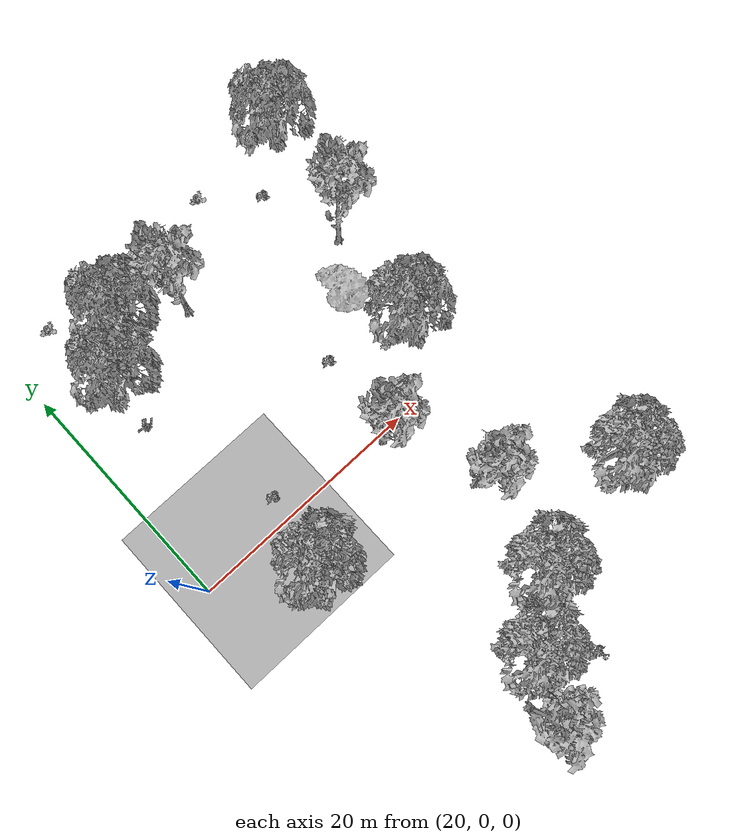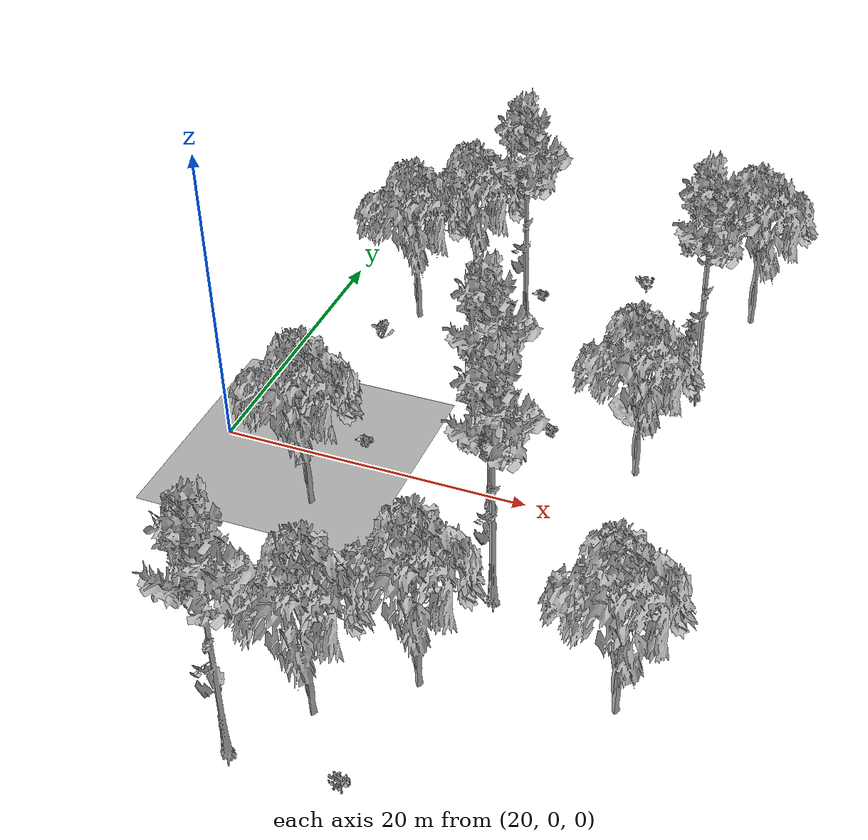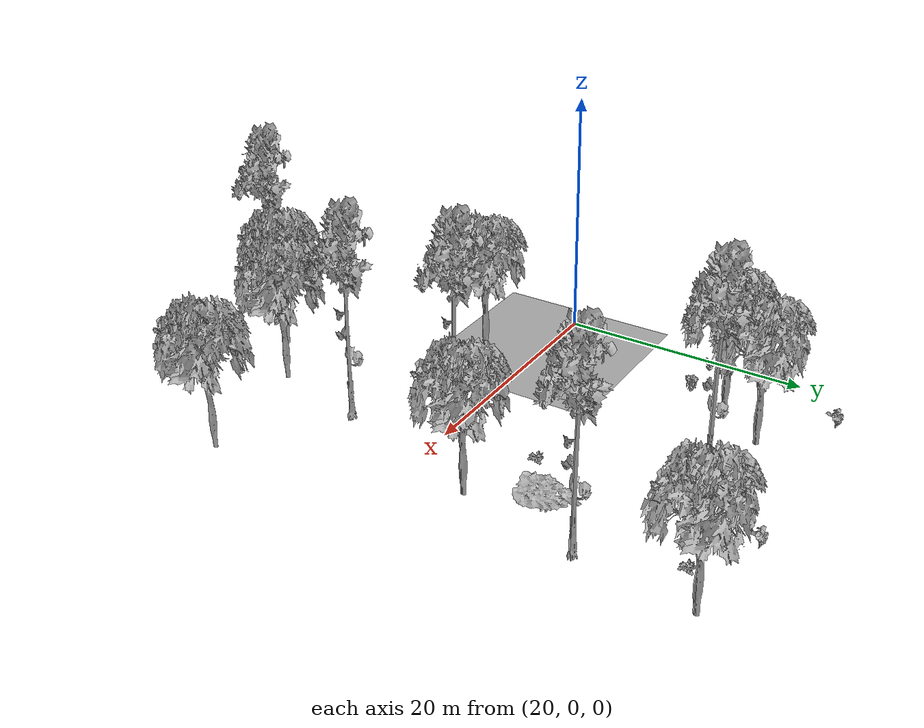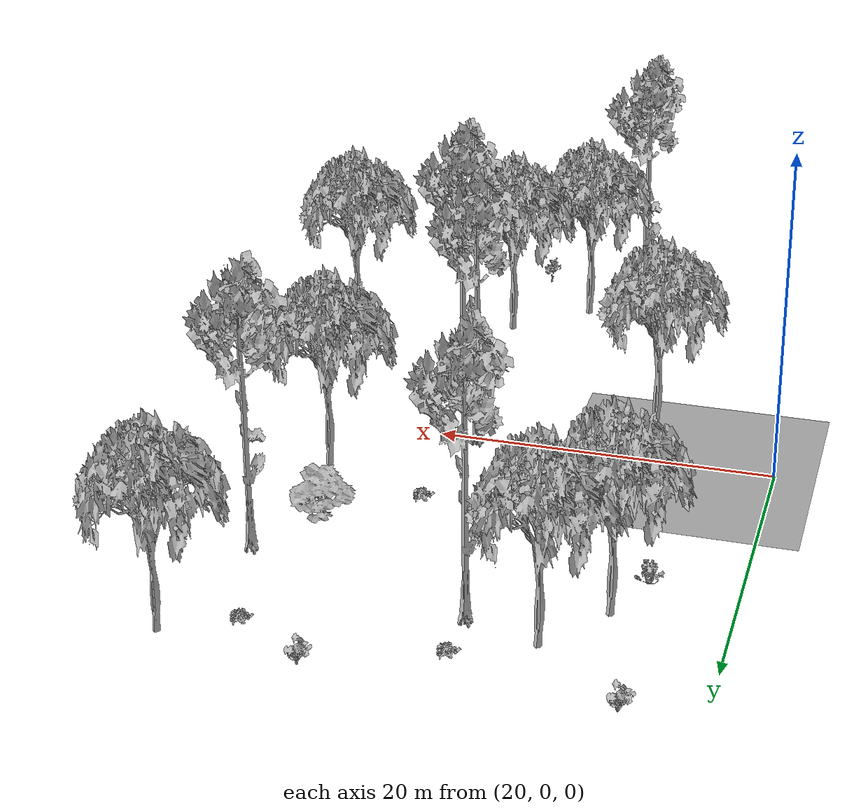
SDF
<sdf version="1.7">
 <world name="default">
  <model name="ground_plane">
   <static>1</static>
   <link name="link">
    <collision name="collision">
     <pose>25.0 0 0 0 -0 0</pose>
     <geometry><plane><normal>0 0 1</normal><size>50 50</size></plane></geometry>
     <surface><contact><ode><min_depth>0.01</min_depth><max_vel>0</max_vel></ode></contact></surface>
    </collision>
    <visual name="grass">
     <pose>25.0 0 0 0 -0 0</pose>
     <cast_shadows>0</cast_shadows>
     <geometry>
      <mesh>
       <scale>0.2731578947368421 0.2802702702702703 0.1</scale>
       <uri>file://grass_plane/meshes/grass_plane.dae</uri>
      </mesh>
     </geometry>
    </visual>
   </link>
  </model>
  <model name="Tree 0">
   <static>1</static>
   <pose>46.74372401099273 14.34421200654024 0 1.57079 -0 0</pose>
   <link name="link">
    <collision name="collision">
     <geometry><mesh><scale>3.5 5 3.5</scale><uri>model://tree_9/meshes/tree_9.obj</uri></mesh></geometry>
    </collision>
    <visual name="visual">
     <geometry><mesh><scale>3.5 5 3.5</scale><uri>model://tree_9/meshes/tree_9.obj</uri></mesh></geometry>
    </visual>
   </link>
  </model>
  <model name="Tree 2">
   <static>1</static>
   <pose>34.99372401099272 -18.989121326793093 0 1.57079 -0 0</pose>
   <link name="link">
    <collision name="collision">
     <geometry><mesh><scale>3.5 5 3.5</scale><uri>model://tree_2/meshes/tree_2.obj</uri></mesh></geometry>
    </collision>
    <visual name="visual">
     <geometry><mesh><scale>3.5 5 3.5</scale><uri>model://tree_2/meshes/tree_2.obj</uri></mesh></geometry>
    </visual>
   </link>
  </model>
  <model name="Tree 4">
   <static>1</static>
   <pose>40.86872401099273 -7.878010215681989 0 1.57079 -0 0</pose>
   <link name="link">
    <collision name="collision">
     <geometry><mesh><scale>3.5 5 3.5</scale><uri>model://tree_9/meshes/tree_9.obj</uri></mesh></geometry>
    </collision>
    <visual name="visual">
     <geometry><mesh><scale>3.5 5 3.5</scale><uri>model://tree_9/meshes/tree_9.obj</uri></mesh></geometry>
    </visual>
   </link>
  </model>
  <model name="Tree 6">
   <static>1</static>
   <pose>29.118724010992725 19.899767562095796 0 1.57079 -0 0</pose>
   <link name="link">
    <collision name="collision">
     <geometry><mesh><scale>3.5 5 3.5</scale><uri>model://tree_2/meshes/tree_2.obj</uri></mesh></geometry>
    </collision>
    <visual name="visual">
     <geometry><mesh><scale>3.5 5 3.5</scale><uri>model://tree_2/meshes/tree_2.obj</uri></mesh></geometry>
    </visual>
   </link>
  </model>
  <model name="Tree 8">
   <static>1</static>
   <pose>49.68122401099273 -13.433565771237538 0 1.57079 -0 0</pose>
   <link name="link">
    <collision name="collision">
     <geometry><mesh><scale>3.5 5 3.5</scale><uri>model://tree_2/meshes/tree_2.obj</uri></mesh></geometry>
    </collision>
    <visual name="visual">
     <geometry><mesh><scale>3.5 5 3.5</scale><uri>model://tree_2/meshes/tree_2.obj</uri></mesh></geometry>
    </visual>
   </link>
  </model>
  <model name="Tree 9">
   <static>1</static>
   <pose>26.181224010992725 16.196063858392087 0 1.57079 -0 0</pose>
   <link name="link">
    <collision name="collision">
     <geometry><mesh><scale>3.5 5 3.5</scale><uri>model://tree_2/meshes/tree_2.obj</uri></mesh></geometry>
    </collision>
    <visual name="visual">
     <geometry><mesh><scale>3.5 5 3.5</scale><uri>model://tree_2/meshes/tree_2.obj</uri></mesh></geometry>
    </visual>
   </link>
  </model>
  <model name="Tree 10">
   <static>1</static>
   <pose>37.93122401099273 -0.470602808274581 0 1.57079 -0 0</pose>
   <link name="link">
    <collision name="collision">
     <geometry><mesh><scale>3.5 5 3.5</scale><uri>model://tree_9/meshes/tree_9.obj</uri></mesh></geometry>
    </collision>
    <visual name="visual">
     <geometry><mesh><scale>3.5 5 3.5</scale><uri>model://tree_9/meshes/tree_9.obj</uri></mesh></geometry>
    </visual>
   </link>
  </model>
  <model name="Tree 12">
   <static>1</static>
   <pose>43.80622401099273 10.640508302836544 0 1.57079 -0 0</pose>
   <link name="link">
    <collision name="collision">
     <geometry><mesh><scale>4 2.5 4</scale><uri>model://tree_1/meshes/tree_1.obj</uri></mesh></geometry>
    </collision>
    <visual name="visual">
     <geometry><mesh><scale>4 2.5 4</scale><uri>model://tree_1/meshes/tree_1.obj</uri></mesh></geometry>
    </visual>
   </link>
  </model>
  <model name="Tree 14">
   <static>1</static>
   <pose>32.05622401099272 -22.692825030496795 0 1.57079 -0 0</pose>
   <link name="link">
    <collision name="collision">
     <geometry><mesh><scale>3.5 5 3.5</scale><uri>model://tree_9/meshes/tree_9.obj</uri></mesh></geometry>
    </collision>
    <visual name="visual">
     <geometry><mesh><scale>3.5 5 3.5</scale><uri>model://tree_9/meshes/tree_9.obj</uri></mesh></geometry>
    </visual>
   </link>
  </model>
  <model name="Tree 16">
   <static>1</static>
   <pose>45.27497401099273 5.084952747280987 0 1.57079 -0 0</pose>
   <link name="link">
    <collision name="collision">
     <geometry><mesh><scale>3.5 5 3.5</scale><uri>model://tree_2/meshes/tree_2.obj</uri></mesh></geometry>
    </collision>
    <visual name="visual">
     <geometry><mesh><scale>3.5 5 3.5</scale><uri>model://tree_2/meshes/tree_2.obj</uri></mesh></geometry>
    </visual>
   </link>
  </model>
  <model name="Tree 18">
   <static>1</static>
   <pose>33.52497401099272 18.04791571024394 0 1.57079 -0 0</pose>
   <link name="link">
    <collision name="collision">
     <geometry><mesh><scale>3.5 5 3.5</scale><uri>model://tree_9/meshes/tree_9.obj</uri></mesh></geometry>
    </collision>
    <visual name="visual">
     <geometry><mesh><scale>3.5 5 3.5</scale><uri>model://tree_9/meshes/tree_9.obj</uri></mesh></geometry>
    </visual>
   </link>
  </model>
  <model name="Tree 20">
   <static>1</static>
   <pose>39.39997401099273 -15.285417623089389 0 1.57079 -0 0</pose>
   <link name="link">
    <collision name="collision">
     <geometry><mesh><scale>3.5 5 3.5</scale><uri>model://tree_2/meshes/tree_2.obj</uri></mesh></geometry>
    </collision>
    <visual name="visual">
     <geometry><mesh><scale>3.5 5 3.5</scale><uri>model://tree_2/meshes/tree_2.obj</uri></mesh></geometry>
    </visual>
   </link>
  </model>
  <model name="Tree 22">
   <static>1</static>
   <pose>27.649974010992725 -4.174306511978283 0 1.57079 -0 0</pose>
   <link name="link">
    <collision name="collision">
     <geometry><mesh><scale>3.5 5 3.5</scale><uri>model://tree_2/meshes/tree_2.obj</uri></mesh></geometry>
    </collision>
    <visual name="visual">
     <geometry><mesh><scale>3.5 5 3.5</scale><uri>model://tree_2/meshes/tree_2.obj</uri></mesh></geometry>
    </visual>
   </link>
  </model>
  <model name="Tree 24">
   <static>1</static>
   <pose>48.21247401099273 23.603471265799506 0 1.57079 -0 0</pose>
   <link name="link">
    <collision name="collision">
     <geometry><mesh><scale>3.5 5 3.5</scale><uri>model://tree_2/meshes/tree_2.obj</uri></mesh></geometry>
    </collision>
    <visual name="visual">
     <geometry><mesh><scale>3.5 5 3.5</scale><uri>model://tree_2/meshes/tree_2.obj</uri></mesh></geometry>
    </visual>
   </link>
  </model>
  <model name="Bush 0">
   <static>1</static>
   <pose>33.47204105116704 21.532102647232172 0 1.57079 -0 0</pose>
   <link name="link">
    <collision name="collision">
     <geometry><mesh><scale>2 2 2</scale><uri>model://bush_2/meshes/bush_2.obj</uri></mesh></geometry>
     <surface><contact><collide_without_contact>false</collide_without_contact></contact></surface>
    </collision>
    <visual name="visual">
     <geometry><mesh><scale>2 2 2</scale><uri>model://bush_2/meshes/bush_2.obj</uri></mesh></geometry>
    </visual>
   </link>
  </model>
  <model name="Bush 2">
   <static>1</static>
   <pose>44.58701966732583 21.400477840736336 0 1.57079 -0 0</pose>
   <link name="link">
    <collision name="collision">
     <geometry><mesh><scale>2 2 2</scale><uri>model://bush_2/meshes/bush_2.obj</uri></mesh></geometry>
     <surface><contact><collide_without_contact>false</collide_without_contact></contact></surface>
    </collision>
    <visual name="visual">
     <geometry><mesh><scale>2 2 2</scale><uri>model://bush_2/meshes/bush_2.obj</uri></mesh></geometry>
    </visual>
   </link>
  </model>
  <model name="Bush 3">
   <static>1</static>
   <pose>28.442367260946416 2.0776109194037033 0 1.57079 -0 0</pose>
   <link name="link">
    <collision name="collision">
     <geometry><mesh><scale>2 2 2</scale><uri>model://bush_2/meshes/bush_2.obj</uri></mesh></geometry>
     <surface><contact><collide_without_contact>false</collide_without_contact></contact></surface>
    </collision>
    <visual name="visual">
     <geometry><mesh><scale>2 2 2</scale><uri>model://bush_2/meshes/bush_2.obj</uri></mesh></geometry>
    </visual>
   </link>
  </model>
  <model name="Bush 6">
   <static>1</static>
   <pose>40.417660830245055 24.567382199594412 0 1.57079 -0 0</pose>
   <link name="link">
    <collision name="collision">
     <geometry><mesh><scale>2 2 2</scale><uri>model://bush_0/meshes/bush_0.obj</uri></mesh></geometry>
     <surface><contact><collide_without_contact>false</collide_without_contact></contact></surface>
    </collision>
    <visual name="visual">
     <geometry><mesh><scale>2 2 2</scale><uri>model://bush_0/meshes/bush_0.obj</uri></mesh></geometry>
    </visual>
   </link>
  </model>
  <model name="Bush 7">
   <static>1</static>
   <pose>38.68681120515519 -23.14858433234107 0 1.57079 -0 0</pose>
   <link name="link">
    <collision name="collision">
     <geometry><mesh><scale>2 2 2</scale><uri>model://bush_5/meshes/bush_5.obj</uri></mesh></geometry>
     <surface><contact><collide_without_contact>false</collide_without_contact></contact></surface>
    </collision>
    <visual name="visual">
     <geometry><mesh><scale>2 2 2</scale><uri>model://bush_5/meshes/bush_5.obj</uri></mesh></geometry>
    </visual>
   </link>
  </model>
  <model name="Bush 8">
   <static>1</static>
   <pose>24.235360480125728 24.213882402305707 0 1.57079 -0 0</pose>
   <link name="link">
    <collision name="collision">
     <geometry><mesh><scale>2 2 2</scale><uri>model://bush_0/meshes/bush_0.obj</uri></mesh></geometry>
     <surface><contact><collide_without_contact>false</collide_without_contact></contact></surface>
    </collision>
    <visual name="visual">
     <geometry><mesh><scale>2 2 2</scale><uri>model://bush_0/meshes/bush_0.obj</uri></mesh></geometry>
    </visual>
   </link>
  </model>
  <model name="Bush 9">
   <static>1</static>
   <pose>39.04735136313285 7.1959105737684155 0 1.57079 -0 0</pose>
   <link name="link">
    <collision name="collision">
     <geometry><mesh><scale>2 2 2</scale><uri>model://bush_2/meshes/bush_2.obj</uri></mesh></geometry>
     <surface><contact><collide_without_contact>false</collide_without_contact></contact></surface>
    </collision>
    <visual name="visual">
     <geometry><mesh><scale>2 2 2</scale><uri>model://bush_2/meshes/bush_2.obj</uri></mesh></geometry>
    </visual>
   </link>
  </model>
  <model name="Bush 13">
   <static>1</static>
   <pose>24.84680260737697 12.843183036576619 0 1.57079 -0 0</pose>
   <link name="link">
    <collision name="collision">
     <geometry><mesh><scale>2 2 2</scale><uri>model://bush_4/meshes/bush_4.obj</uri></mesh></geometry>
     <surface><contact><collide_without_contact>false</collide_without_contact></contact></surface>
    </collision>
    <visual name="visual">
     <geometry><mesh><scale>2 2 2</scale><uri>model://bush_4/meshes/bush_4.obj</uri></mesh></geometry>
    </visual>
   </link>
  </model>
 </world>
</sdf>
